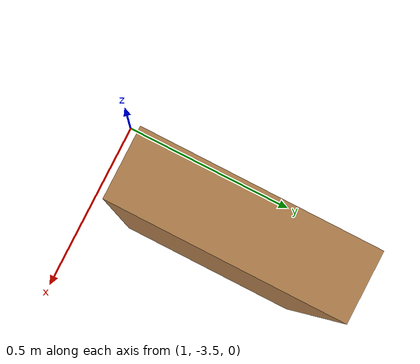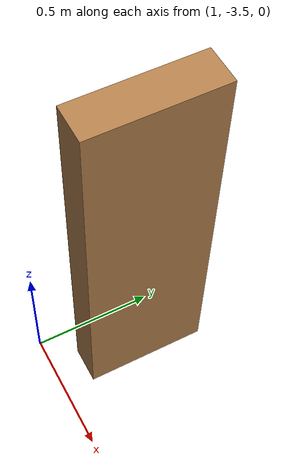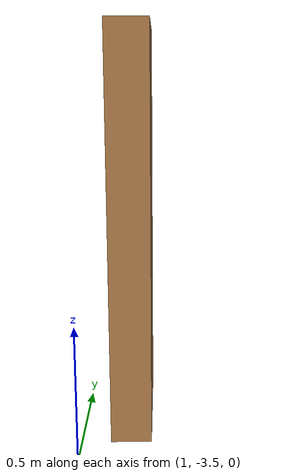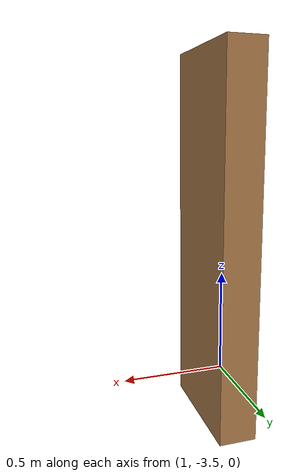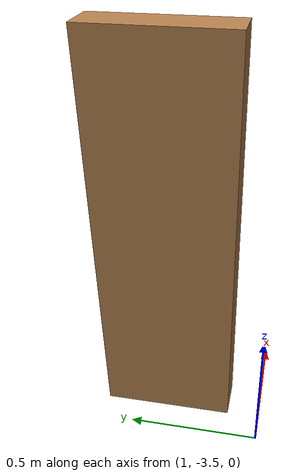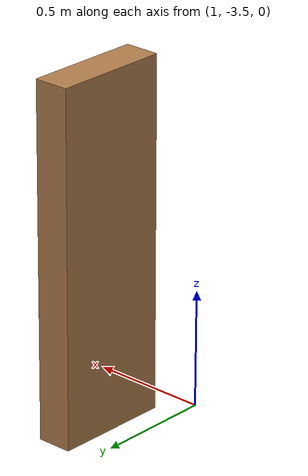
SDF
<?xml version='1.0'?>
<sdf version='1.6'>
  <model name='litlle'>
    <pose frame=''>1.18 -3.125 0 0 -0 0</pose>
    <link name='Wall_4'>
      <collision name='Wall_4_Collision'>
        <geometry>
          <box>
            <size>0.5 0.15 1.5</size>
          </box>
        </geometry>
        <pose frame=''>0 0 0.75 0 -0 0</pose>
      </collision>
      <visual name='Wall_4_Visual'>
        <pose frame=''>0 0 0.75 0 -0 0</pose>
        <geometry>
          <box>
            <size>0.5 0.15 1.5</size>
          </box>
        </geometry>
        <material>
          <script>
            <uri>file://media/materials/scripts/gazebo.material</uri>
            <name>Gazebo/Wood</name>
          </script>
          <ambient>1 1 1 1</ambient>
        </material>
        <meta>
          <layer>0</layer>
        </meta>
      </visual>
      <pose frame=''>0 0 0 0 -0 -1.5708</pose>
    </link>
    <static>1</static>
  </model>
</sdf>
